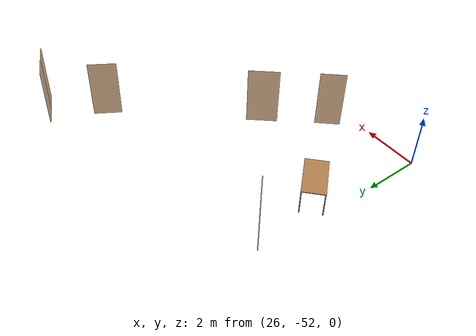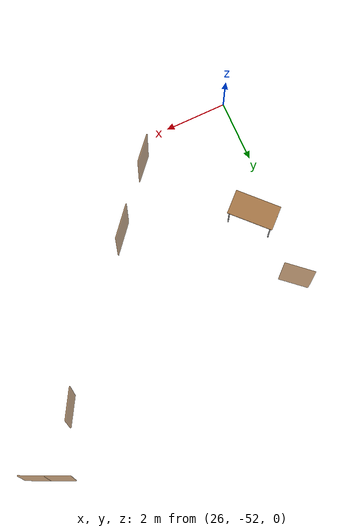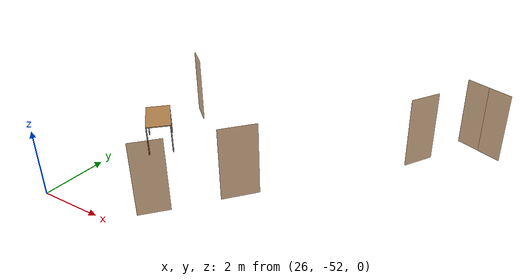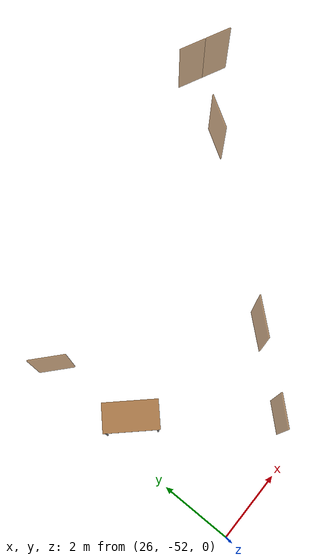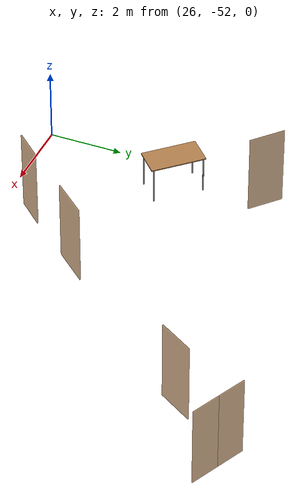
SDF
<sdf version="1.6">
 <world name="world">
  <model name="OpenRobotics/Table_2">
   <static>1</static>
   <link name="link">
    <collision name="surface">
     <pose>0 0 1 0 -0 0</pose>
     <geometry><box><size>1.5 0.8 0.03</size></box></geometry>
     <surface><friction><ode><mu>0.6</mu><mu2>0.6</mu2></ode></friction></surface>
    </collision>
    <visual name="visual1">
     <pose>0 0 1 0 -0 0</pose>
     <geometry><box><size>1.5 0.8 0.03</size></box></geometry>
     <material>
      <script><uri>file://media/materials/scripts/gazebo.material</uri><name>Gazebo/Wood</name></script>
     </material>
    </visual>
    <collision name="front_left_leg">
     <pose>0.68 0.38 0.5 0 -0 0</pose>
     <geometry><cylinder><radius>0.02</radius><length>1</length></cylinder></geometry>
    </collision>
    <visual name="front_left_leg">
     <pose>0.68 0.38 0.5 0 -0 0</pose>
     <geometry><cylinder><radius>0.02</radius><length>1</length></cylinder></geometry>
     <material>
      <script><uri>file://media/materials/scripts/gazebo.material</uri><name>Gazebo/Grey</name></script>
     </material>
    </visual>
    <collision name="front_right_leg">
     <pose>0.68 -0.38 0.5 0 -0 0</pose>
     <geometry><cylinder><radius>0.02</radius><length>1</length></cylinder></geometry>
    </collision>
    <visual name="front_right_leg">
     <pose>0.68 -0.38 0.5 0 -0 0</pose>
     <geometry><cylinder><radius>0.02</radius><length>1</length></cylinder></geometry>
     <material>
      <script><uri>file://media/materials/scripts/gazebo.material</uri><name>Gazebo/Grey</name></script>
     </material>
    </visual>
    <collision name="back_right_leg">
     <pose>-0.68 -0.38 0.5 0 -0 0</pose>
     <geometry><cylinder><radius>0.02</radius><length>1</length></cylinder></geometry>
    </collision>
    <visual name="back_right_leg">
     <pose>-0.68 -0.38 0.5 0 -0 0</pose>
     <geometry><cylinder><radius>0.02</radius><length>1</length></cylinder></geometry>
     <material>
      <script><uri>file://media/materials/scripts/gazebo.material</uri><name>Gazebo/Grey</name></script>
     </material>
    </visual>
    <collision name="back_left_leg">
     <pose>-0.68 0.38 0.5 0 -0 0</pose>
     <geometry><cylinder><radius>0.02</radius><length>1</length></cylinder></geometry>
    </collision>
    <visual name="back_left_leg">
     <pose>-0.68 0.38 0.5 0 -0 0</pose>
     <geometry><cylinder><radius>0.02</radius><length>1</length></cylinder></geometry>
     <material>
      <script><uri>file://media/materials/scripts/gazebo.material</uri><name>Gazebo/Grey</name></script>
     </material>
    </visual>
   </link>
   <pose>26.7964 -48.1502 0 0 -0 2.3292</pose>
  </model>
  <model name="D44">
   <pose>34.5058 -44.8919 -0 0 -0 1.02515</pose>
   <link name="right">
    <pose>0 0 1.11 0 -0 0</pose>
    <visual name="right_visual">
     <geometry><box><size>1.02742 0.03 2.2</size></box></geometry>
     <material><ambient>0.5 0.25 0 0.6</ambient><diffuse>0.5 0.25 0 0.6</diffuse></material>
    </visual>
    <collision name="right_collision">
     <geometry><box><size>1.02742 0.03 2.2</size></box></geometry>
     <surface><contact><collide_bitmask>2</collide_bitmask></contact></surface>
    </collision>
    <inertial>
     <mass>50</mass>
     <inertia><ixx>20.1704</ixx><iyy>24.565</iyy><izz>4.40204</izz><ixy>0</ixy><ixz>0</ixz><iyz>0</iyz></inertia>
    </inertial>
   </link>
   <joint name="right_joint" type="revolute">
    <parent>world</parent>
    <child>right</child>
    <axis>
     <xyz>0 0 -1</xyz>
     <limit><lower>0</lower><upper>1.57</upper></limit>
     <dynamics><spring_reference>0</spring_reference><spring_stiffness>0</spring_stiffness></dynamics>
     <use_parent_model_frame>0</use_parent_model_frame>
    </axis>
    <pose>0.518709 0 0 0 -0 0</pose>
   </joint>
   <plugin name="door_D44" filename="libdoor.so">
    <v_max_door>0.5</v_max_door>
    <a_max_door>0.3</a_max_door>
    <a_nom_door>0.15</a_nom_door>
    <dx_min_door>0.01</dx_min_door>
    <f_max_door>500.0</f_max_door>
    <door name="D44" type="SwingDoor" left_joint_name="empty_joint" right_joint_name="right_joint"/>
   </plugin>
  </model>
  <model name="D45">
   <pose>26.529 -45.6976 0 0 -0 2.4143</pose>
   <link name="right">
    <pose>0 0 1.11 0 -0 0</pose>
    <visual name="right_visual">
     <geometry><box><size>0.981221 0.03 2.2</size></box></geometry>
     <material><ambient>0.5 0.25 0 0.6</ambient><diffuse>0.5 0.25 0 0.6</diffuse></material>
    </visual>
    <collision name="right_collision">
     <geometry><box><size>0.981221 0.03 2.2</size></box></geometry>
     <surface><contact><collide_bitmask>2</collide_bitmask></contact></surface>
    </collision>
    <inertial>
     <mass>50</mass>
     <inertia><ixx>20.1704</ixx><iyy>24.1783</iyy><izz>4.01539</izz><ixy>0</ixy><ixz>0</ixz><iyz>0</iyz></inertia>
    </inertial>
   </link>
   <joint name="right_joint" type="revolute">
    <parent>world</parent>
    <child>right</child>
    <axis>
     <xyz>0 0 -1</xyz>
     <limit><lower>0</lower><upper>1.57</upper></limit>
     <dynamics><spring_reference>0</spring_reference><spring_stiffness>0</spring_stiffness></dynamics>
     <use_parent_model_frame>0</use_parent_model_frame>
    </axis>
    <pose>0.495611 0 0 0 -0 0</pose>
   </joint>
   <plugin name="door_D45" filename="libdoor.so">
    <v_max_door>0.5</v_max_door>
    <a_max_door>0.3</a_max_door>
    <a_nom_door>0.15</a_nom_door>
    <dx_min_door>0.01</dx_min_door>
    <f_max_door>500.0</f_max_door>
    <door name="D45" type="SwingDoor" left_joint_name="empty_joint" right_joint_name="right_joint"/>
   </plugin>
  </model>
  <model name="D46">
   <pose>30.8095 -49.2646 0 0 -0 -2.28278</pose>
   <link name="right">
    <pose>0 0 1.11 0 -0 0</pose>
    <visual name="right_visual">
     <geometry><box><size>1.1245 0.03 2.2</size></box></geometry>
     <material><ambient>0.5 0.25 0 0.6</ambient><diffuse>0.5 0.25 0 0.6</diffuse></material>
    </visual>
    <collision name="right_collision">
     <geometry><box><size>1.1245 0.03 2.2</size></box></geometry>
     <surface><contact><collide_bitmask>2</collide_bitmask></contact></surface>
    </collision>
    <inertial>
     <mass>50</mass>
     <inertia><ixx>20.1704</ixx><iyy>25.4354</iyy><izz>5.27245</izz><ixy>0</ixy><ixz>0</ixz><iyz>0</iyz></inertia>
    </inertial>
   </link>
   <joint name="right_joint" type="revolute">
    <parent>world</parent>
    <child>right</child>
    <axis>
     <xyz>0 0 -1</xyz>
     <limit><lower>0</lower><upper>1.57</upper></limit>
     <dynamics><spring_reference>0</spring_reference><spring_stiffness>0</spring_stiffness></dynamics>
     <use_parent_model_frame>0</use_parent_model_frame>
    </axis>
    <pose>0.567248 0 0 0 -0 0</pose>
   </joint>
   <plugin name="door_D46" filename="libdoor.so">
    <v_max_door>0.5</v_max_door>
    <a_max_door>0.3</a_max_door>
    <a_nom_door>0.15</a_nom_door>
    <dx_min_door>0.01</dx_min_door>
    <f_max_door>500.0</f_max_door>
    <door name="D46" type="SwingDoor" left_joint_name="empty_joint" right_joint_name="right_joint"/>
   </plugin>
  </model>
  <model name="D47">
   <pose>29.2579 -51.0965 0 0 -0 0.835643</pose>
   <link name="right">
    <pose>0 0 1.11 0 -0 0</pose>
    <visual name="right_visual">
     <geometry><box><size>0.912573 0.03 2.2</size></box></geometry>
     <material><ambient>0.5 0.25 0 0.6</ambient><diffuse>0.5 0.25 0 0.6</diffuse></material>
    </visual>
    <collision name="right_collision">
     <geometry><box><size>0.912573 0.03 2.2</size></box></geometry>
     <surface><contact><collide_bitmask>2</collide_bitmask></contact></surface>
    </collision>
    <inertial>
     <mass>50</mass>
     <inertia><ixx>20.1704</ixx><iyy>23.6366</iyy><izz>3.47371</izz><ixy>0</ixy><ixz>0</ixz><iyz>0</iyz></inertia>
    </inertial>
   </link>
   <joint name="right_joint" type="revolute">
    <parent>world</parent>
    <child>right</child>
    <axis>
     <xyz>0 0 1</xyz>
     <limit><lower>0</lower><upper>1.57</upper></limit>
     <dynamics><spring_reference>0</spring_reference><spring_stiffness>0</spring_stiffness></dynamics>
     <use_parent_model_frame>0</use_parent_model_frame>
    </axis>
    <pose>0.461287 0 0 0 -0 0</pose>
   </joint>
   <plugin name="door_D47" filename="libdoor.so">
    <v_max_door>0.5</v_max_door>
    <a_max_door>0.3</a_max_door>
    <a_nom_door>0.15</a_nom_door>
    <dx_min_door>0.01</dx_min_door>
    <f_max_door>500.0</f_max_door>
    <door name="D47" type="SwingDoor" left_joint_name="empty_joint" right_joint_name="right_joint"/>
   </plugin>
  </model>
  <model name="DH1">
   <pose>35.9645 -43.2445 0 0 -0 2.69974</pose>
   <link name="right">
    <pose>0.392621 0 1.11 0 -0 0</pose>
    <visual name="right_visual">
     <geometry><box><size>0.775242 0.03 2.2</size></box></geometry>
     <material><ambient>0.5 0.25 0 0.6</ambient><diffuse>0.5 0.25 0 0.6</diffuse></material>
    </visual>
    <collision name="right_collision">
     <geometry><box><size>0.775242 0.03 2.2</size></box></geometry>
     <surface><contact><collide_bitmask>2</collide_bitmask></contact></surface>
    </collision>
    <inertial>
     <mass>50</mass>
     <inertia><ixx>20.1704</ixx><iyy>22.6708</iyy><izz>2.50792</izz><ixy>0</ixy><ixz>0</ixz><iyz>0</iyz></inertia>
    </inertial>
   </link>
   <joint name="right_joint" type="revolute">
    <parent>world</parent>
    <child>right</child>
    <axis>
     <xyz>0 0 -1</xyz>
     <limit><lower>0</lower><upper>1.57</upper></limit>
     <dynamics><spring_reference>0</spring_reference><spring_stiffness>0</spring_stiffness></dynamics>
     <use_parent_model_frame>0</use_parent_model_frame>
    </axis>
    <pose>0.392621 0 0 0 -0 0</pose>
   </joint>
   <link name="left">
    <pose>-0.392621 0 1.11 0 -0 0</pose>
    <visual name="left_visual">
     <geometry><box><size>0.775242 0.03 2.2</size></box></geometry>
     <material><ambient>0.5 0.25 0 0.6</ambient><diffuse>0.5 0.25 0 0.6</diffuse></material>
    </visual>
    <collision name="left_collision">
     <geometry><box><size>0.775242 0.03 2.2</size></box></geometry>
     <surface><contact><collide_bitmask>2</collide_bitmask></contact></surface>
    </collision>
    <inertial>
     <mass>50</mass>
     <inertia><ixx>20.1704</ixx><iyy>22.6708</iyy><izz>2.50792</izz><ixy>0</ixy><ixz>0</ixz><iyz>0</iyz></inertia>
    </inertial>
   </link>
   <joint name="left_joint" type="revolute">
    <parent>world</parent>
    <child>left</child>
    <axis>
     <xyz>0 0 -1</xyz>
     <limit><lower>-1.57</lower><upper>0</upper></limit>
     <dynamics><spring_reference>0</spring_reference><spring_stiffness>0</spring_stiffness></dynamics>
     <use_parent_model_frame>0</use_parent_model_frame>
    </axis>
    <pose>-0.392621 0 0 0 -0 0</pose>
   </joint>
   <plugin name="door_DH1" filename="libdoor.so">
    <v_max_door>0.5</v_max_door>
    <a_max_door>0.3</a_max_door>
    <a_nom_door>0.15</a_nom_door>
    <dx_min_door>0.01</dx_min_door>
    <f_max_door>500.0</f_max_door>
    <door name="DH1" type="DoubleSwingDoor" left_joint_name="left_joint" right_joint_name="right_joint"/>
   </plugin>
  </model>
 </world>
</sdf>
